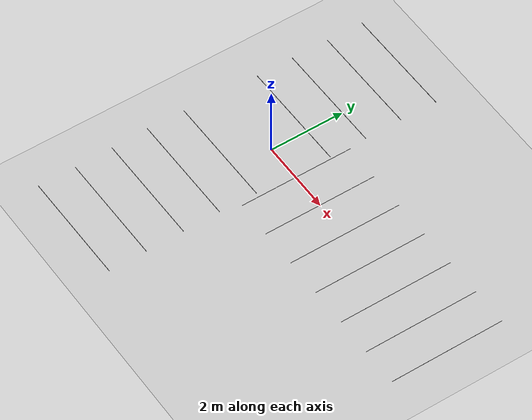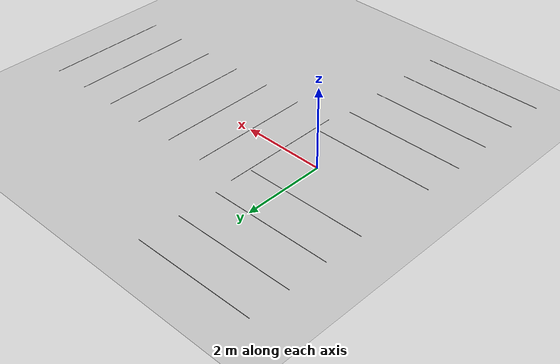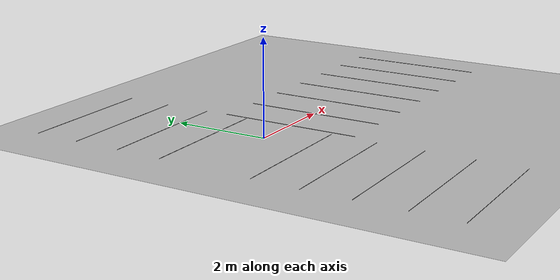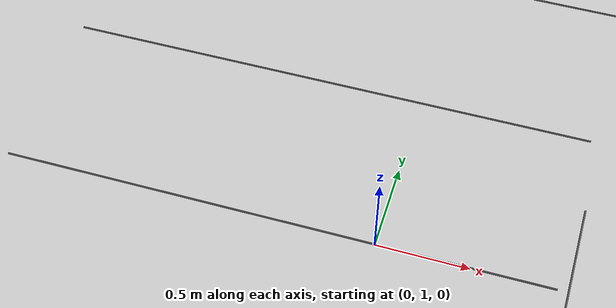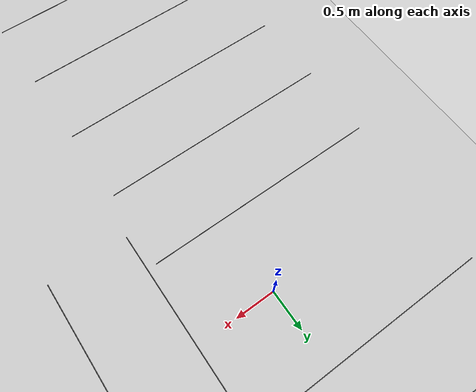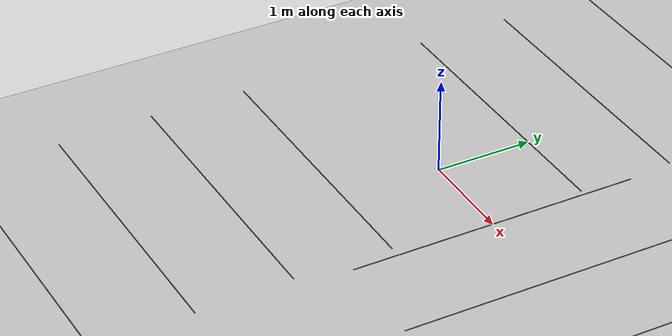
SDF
<sdf version="1.6">
 <world name="default">
  <light name="sun" type="directional">
   <pose>0 0 10 0 -0 0</pose>
   <diffuse>0.8 0.8 0.8 1</diffuse>
   <specular>0.1 0.1 0.1 1</specular>
   <attenuation>
    <range>1000</range>
    <constant>0.9</constant>
    <linear>0.01</linear>
    <quadratic>0.001</quadratic>
   </attenuation>
   <direction>-0.5 0.5 -1</direction>
  </light>
  <model name="ground_plane">
   <static>1</static>
   <link name="link">
    <collision name="collision">
     <geometry><plane><normal>0 0 1</normal><size>100 100</size></plane></geometry>
     <surface><friction><ode><mu>100</mu><mu2>50</mu2></ode></friction></surface>
    </collision>
    <visual name="visual">
     <cast_shadows>0</cast_shadows>
     <geometry><plane><normal>0 0 1</normal><size>100 100</size></plane></geometry>
     <material>
      <script><uri>file://media/materials/scripts/gazebo.material</uri><name>Gazebo/Grey</name></script>
     </material>
    </visual>
    <gravity>0</gravity>
   </link>
  </model>
  <gravity>0 0 -9.8</gravity>
  <magnetic_field>6e-06 2.3e-05 -4.2e-05</magnetic_field>
  <atmosphere type="adiabatic"/>
  <physics name="default_physics" default="0" type="ode">
   <max_step_size>0.001</max_step_size>
   <real_time_factor>1</real_time_factor>
   <real_time_update_rate>1000</real_time_update_rate>
  </physics>
  <scene><ambient>0.4 0.4 0.4 1</ambient><background>0.7 0.7 0.7 1</background><shadows>1</shadows></scene>
  <spherical_coordinates>
   <surface_model>EARTH_WGS84</surface_model>
   <latitude_deg>0</latitude_deg>
   <longitude_deg>0</longitude_deg>
   <elevation>0</elevation>
   <heading_deg>0</heading_deg>
  </spherical_coordinates>
  <model name="unit_cylinder_0_1_0">
   <static>1</static>
   <link name="link">
    <inertial>
     <mass>1</mass>
     <inertia><ixx>0.145833</ixx><ixy>0</ixy><ixz>0</ixz><iyy>0.145833</iyy><iyz>0</iyz><izz>0.125</izz></inertia>
    </inertial>
    <gravity>0</gravity>
    <visual name="visual">
     <geometry><cylinder><radius>0.005</radius><length>3</length></cylinder></geometry>
     <material>
      <script><name>Gazebo/DarkGrey</name><uri>file://media/materials/scripts/gazebo.material</uri></script>
      <ambient>0.3 0.3 0.3 1</ambient>
      <diffuse>0.7 0.7 0.7 1</diffuse>
      <specular>0.01 0.01 0.01 1</specular>
      <emissive>0 0 0 1</emissive>
      <shader type="vertex"><normal_map>__default__</normal_map></shader>
     </material>
    </visual>
    <collision name="collision">
     <geometry><cylinder><radius>0.005</radius><length>3</length></cylinder></geometry>
     <surface>
      <friction>
       <ode><mu>1</mu><mu2>1</mu2><fdir1>0 0 0</fdir1><slip1>0</slip1><slip2>0</slip2></ode>
       <torsional>
        <coefficient>1</coefficient>
        <patch_radius>0</patch_radius>
        <surface_radius>0</surface_radius>
        <use_patch_radius>1</use_patch_radius>
        <ode><slip>0</slip></ode>
       </torsional>
      </friction>
      <bounce><restitution_coefficient>0</restitution_coefficient><threshold>1e+06</threshold></bounce>
      <contact>
       <collide_without_contact>0</collide_without_contact>
       <collide_without_contact_bitmask>1</collide_without_contact_bitmask>
       <collide_bitmask>1</collide_bitmask>
       <ode>
        <soft_cfm>0</soft_cfm>
        <soft_erp>0.2</soft_erp>
        <kp>1e+13</kp>
        <kd>1</kd>
        <max_vel>0.01</max_vel>
        <min_depth>0</min_depth>
       </ode>
       <bullet>
        <split_impulse>1</split_impulse>
        <split_impulse_penetration_threshold>-0.01</split_impulse_penetration_threshold>
        <soft_cfm>0</soft_cfm>
        <soft_erp>0.2</soft_erp>
        <kp>1e+13</kp>
        <kd>1</kd>
       </bullet>
      </contact>
     </surface>
    </collision>
   </link>
   <static>1</static>
   <pose>0.998726 0.028719 0.005 1.5708 4e-06 1e-06</pose>
  </model>
  <model name="unit_cylinder_0_1_0_clone">
   <static>1</static>
   <link name="link">
    <inertial>
     <mass>1</mass>
     <inertia><ixx>0.145833</ixx><ixy>0</ixy><ixz>0</ixz><iyy>0.145833</iyy><iyz>0</iyz><izz>0.125</izz></inertia>
    </inertial>
    <gravity>0</gravity>
    <visual name="visual">
     <geometry><cylinder><radius>0.005</radius><length>3</length></cylinder></geometry>
     <material>
      <script><name>Gazebo/DarkGrey</name><uri>file://media/materials/scripts/gazebo.material</uri></script>
      <ambient>0.3 0.3 0.3 1</ambient>
      <diffuse>0.7 0.7 0.7 1</diffuse>
      <specular>0.01 0.01 0.01 1</specular>
      <emissive>0 0 0 1</emissive>
      <shader type="vertex"><normal_map>__default__</normal_map></shader>
     </material>
    </visual>
    <collision name="collision">
     <geometry><cylinder><radius>0.005</radius><length>3</length></cylinder></geometry>
     <surface>
      <friction>
       <ode><mu>1</mu><mu2>1</mu2><fdir1>0 0 0</fdir1><slip1>0</slip1><slip2>0</slip2></ode>
       <torsional>
        <coefficient>1</coefficient>
        <patch_radius>0</patch_radius>
        <surface_radius>0</surface_radius>
        <use_patch_radius>1</use_patch_radius>
        <ode><slip>0</slip></ode>
       </torsional>
      </friction>
      <bounce><restitution_coefficient>0</restitution_coefficient><threshold>1e+06</threshold></bounce>
      <contact>
       <collide_without_contact>0</collide_without_contact>
       <collide_without_contact_bitmask>1</collide_without_contact_bitmask>
       <collide_bitmask>1</collide_bitmask>
       <ode>
        <soft_cfm>0</soft_cfm>
        <soft_erp>0.2</soft_erp>
        <kp>1e+13</kp>
        <kd>1</kd>
        <max_vel>0.01</max_vel>
        <min_depth>0</min_depth>
       </ode>
       <bullet>
        <split_impulse>1</split_impulse>
        <split_impulse_penetration_threshold>-0.01</split_impulse_penetration_threshold>
        <soft_cfm>0</soft_cfm>
        <soft_erp>0.2</soft_erp>
        <kp>1e+13</kp>
        <kd>1</kd>
       </bullet>
      </contact>
     </surface>
    </collision>
   </link>
   <static>1</static>
   <pose>1.98473 0.005179 0.005 1.5708 4e-06 1e-06</pose>
  </model>
  <model name="unit_cylinder_0_1_0_clone_0">
   <static>1</static>
   <link name="link">
    <inertial>
     <mass>1</mass>
     <inertia><ixx>0.145833</ixx><ixy>0</ixy><ixz>0</ixz><iyy>0.145833</iyy><iyz>0</iyz><izz>0.125</izz></inertia>
    </inertial>
    <gravity>0</gravity>
    <visual name="visual">
     <geometry><cylinder><radius>0.005</radius><length>3</length></cylinder></geometry>
     <material>
      <script><name>Gazebo/DarkGrey</name><uri>file://media/materials/scripts/gazebo.material</uri></script>
      <ambient>0.3 0.3 0.3 1</ambient>
      <diffuse>0.7 0.7 0.7 1</diffuse>
      <specular>0.01 0.01 0.01 1</specular>
      <emissive>0 0 0 1</emissive>
      <shader type="vertex"><normal_map>__default__</normal_map></shader>
     </material>
    </visual>
    <collision name="collision">
     <geometry><cylinder><radius>0.005</radius><length>3</length></cylinder></geometry>
     <surface>
      <friction>
       <ode><mu>1</mu><mu2>1</mu2><fdir1>0 0 0</fdir1><slip1>0</slip1><slip2>0</slip2></ode>
       <torsional>
        <coefficient>1</coefficient>
        <patch_radius>0</patch_radius>
        <surface_radius>0</surface_radius>
        <use_patch_radius>1</use_patch_radius>
        <ode><slip>0</slip></ode>
       </torsional>
      </friction>
      <bounce><restitution_coefficient>0</restitution_coefficient><threshold>1e+06</threshold></bounce>
      <contact>
       <collide_without_contact>0</collide_without_contact>
       <collide_without_contact_bitmask>1</collide_without_contact_bitmask>
       <collide_bitmask>1</collide_bitmask>
       <ode>
        <soft_cfm>0</soft_cfm>
        <soft_erp>0.2</soft_erp>
        <kp>1e+13</kp>
        <kd>1</kd>
        <max_vel>0.01</max_vel>
        <min_depth>0</min_depth>
       </ode>
       <bullet>
        <split_impulse>1</split_impulse>
        <split_impulse_penetration_threshold>-0.01</split_impulse_penetration_threshold>
        <soft_cfm>0</soft_cfm>
        <soft_erp>0.2</soft_erp>
        <kp>1e+13</kp>
        <kd>1</kd>
       </bullet>
      </contact>
     </surface>
    </collision>
   </link>
   <static>1</static>
   <pose>2.9918 0.003827 0.005 1.5708 4e-06 1e-06</pose>
  </model>
  <model name="unit_cylinder_0_1_0_clone_1">
   <static>1</static>
   <link name="link">
    <inertial>
     <mass>1</mass>
     <inertia><ixx>0.145833</ixx><ixy>0</ixy><ixz>0</ixz><iyy>0.145833</iyy><iyz>0</iyz><izz>0.125</izz></inertia>
    </inertial>
    <gravity>0</gravity>
    <visual name="visual">
     <geometry><cylinder><radius>0.005</radius><length>3</length></cylinder></geometry>
     <material>
      <script><name>Gazebo/DarkGrey</name><uri>file://media/materials/scripts/gazebo.material</uri></script>
      <ambient>0.3 0.3 0.3 1</ambient>
      <diffuse>0.7 0.7 0.7 1</diffuse>
      <specular>0.01 0.01 0.01 1</specular>
      <emissive>0 0 0 1</emissive>
      <shader type="vertex"><normal_map>__default__</normal_map></shader>
     </material>
    </visual>
    <collision name="collision">
     <geometry><cylinder><radius>0.005</radius><length>3</length></cylinder></geometry>
     <surface>
      <friction>
       <ode><mu>1</mu><mu2>1</mu2><fdir1>0 0 0</fdir1><slip1>0</slip1><slip2>0</slip2></ode>
       <torsional>
        <coefficient>1</coefficient>
        <patch_radius>0</patch_radius>
        <surface_radius>0</surface_radius>
        <use_patch_radius>1</use_patch_radius>
        <ode><slip>0</slip></ode>
       </torsional>
      </friction>
      <bounce><restitution_coefficient>0</restitution_coefficient><threshold>1e+06</threshold></bounce>
      <contact>
       <collide_without_contact>0</collide_without_contact>
       <collide_without_contact_bitmask>1</collide_without_contact_bitmask>
       <collide_bitmask>1</collide_bitmask>
       <ode>
        <soft_cfm>0</soft_cfm>
        <soft_erp>0.2</soft_erp>
        <kp>1e+13</kp>
        <kd>1</kd>
        <max_vel>0.01</max_vel>
        <min_depth>0</min_depth>
       </ode>
       <bullet>
        <split_impulse>1</split_impulse>
        <split_impulse_penetration_threshold>-0.01</split_impulse_penetration_threshold>
        <soft_cfm>0</soft_cfm>
        <soft_erp>0.2</soft_erp>
        <kp>1e+13</kp>
        <kd>1</kd>
       </bullet>
      </contact>
     </surface>
    </collision>
   </link>
   <static>1</static>
   <pose>4 0 0.005 1.5708 4e-06 1e-06</pose>
  </model>
  <model name="unit_cylinder_0_1_0_clone_2">
   <static>1</static>
   <link name="link">
    <inertial>
     <mass>1</mass>
     <inertia><ixx>0.145833</ixx><ixy>0</ixy><ixz>0</ixz><iyy>0.145833</iyy><iyz>0</iyz><izz>0.125</izz></inertia>
    </inertial>
    <gravity>0</gravity>
    <visual name="visual">
     <geometry><cylinder><radius>0.005</radius><length>3</length></cylinder></geometry>
     <material>
      <script><name>Gazebo/DarkGrey</name><uri>file://media/materials/scripts/gazebo.material</uri></script>
      <ambient>0.3 0.3 0.3 1</ambient>
      <diffuse>0.7 0.7 0.7 1</diffuse>
      <specular>0.01 0.01 0.01 1</specular>
      <emissive>0 0 0 1</emissive>
      <shader type="vertex"><normal_map>__default__</normal_map></shader>
     </material>
    </visual>
    <collision name="collision">
     <geometry><cylinder><radius>0.005</radius><length>3</length></cylinder></geometry>
     <surface>
      <friction>
       <ode><mu>1</mu><mu2>1</mu2><fdir1>0 0 0</fdir1><slip1>0</slip1><slip2>0</slip2></ode>
       <torsional>
        <coefficient>1</coefficient>
        <patch_radius>0</patch_radius>
        <surface_radius>0</surface_radius>
        <use_patch_radius>1</use_patch_radius>
        <ode><slip>0</slip></ode>
       </torsional>
      </friction>
      <bounce><restitution_coefficient>0</restitution_coefficient><threshold>1e+06</threshold></bounce>
      <contact>
       <collide_without_contact>0</collide_without_contact>
       <collide_without_contact_bitmask>1</collide_without_contact_bitmask>
       <collide_bitmask>1</collide_bitmask>
       <ode>
        <soft_cfm>0</soft_cfm>
        <soft_erp>0.2</soft_erp>
        <kp>1e+13</kp>
        <kd>1</kd>
        <max_vel>0.01</max_vel>
        <min_depth>0</min_depth>
       </ode>
       <bullet>
        <split_impulse>1</split_impulse>
        <split_impulse_penetration_threshold>-0.01</split_impulse_penetration_threshold>
        <soft_cfm>0</soft_cfm>
        <soft_erp>0.2</soft_erp>
        <kp>1e+13</kp>
        <kd>1</kd>
       </bullet>
      </contact>
     </surface>
    </collision>
   </link>
   <static>1</static>
   <pose>5 0 0.005 1.5708 4e-06 1e-06</pose>
  </model>
  <model name="unit_cylinder_0_1_0_clone_3">
   <static>1</static>
   <link name="link">
    <inertial>
     <mass>1</mass>
     <inertia><ixx>0.145833</ixx><ixy>0</ixy><ixz>0</ixz><iyy>0.145833</iyy><iyz>0</iyz><izz>0.125</izz></inertia>
    </inertial>
    <gravity>0</gravity>
    <visual name="visual">
     <geometry><cylinder><radius>0.005</radius><length>3</length></cylinder></geometry>
     <material>
      <script><name>Gazebo/DarkGrey</name><uri>file://media/materials/scripts/gazebo.material</uri></script>
      <ambient>0.3 0.3 0.3 1</ambient>
      <diffuse>0.7 0.7 0.7 1</diffuse>
      <specular>0.01 0.01 0.01 1</specular>
      <emissive>0 0 0 1</emissive>
      <shader type="vertex"><normal_map>__default__</normal_map></shader>
     </material>
    </visual>
    <collision name="collision">
     <geometry><cylinder><radius>0.005</radius><length>3</length></cylinder></geometry>
     <surface>
      <friction>
       <ode><mu>1</mu><mu2>1</mu2><fdir1>0 0 0</fdir1><slip1>0</slip1><slip2>0</slip2></ode>
       <torsional>
        <coefficient>1</coefficient>
        <patch_radius>0</patch_radius>
        <surface_radius>0</surface_radius>
        <use_patch_radius>1</use_patch_radius>
        <ode><slip>0</slip></ode>
       </torsional>
      </friction>
      <bounce><restitution_coefficient>0</restitution_coefficient><threshold>1e+06</threshold></bounce>
      <contact>
       <collide_without_contact>0</collide_without_contact>
       <collide_without_contact_bitmask>1</collide_without_contact_bitmask>
       <collide_bitmask>1</collide_bitmask>
       <ode>
        <soft_cfm>0</soft_cfm>
        <soft_erp>0.2</soft_erp>
        <kp>1e+13</kp>
        <kd>1</kd>
        <max_vel>0.01</max_vel>
        <min_depth>0</min_depth>
       </ode>
       <bullet>
        <split_impulse>1</split_impulse>
        <split_impulse_penetration_threshold>-0.01</split_impulse_penetration_threshold>
        <soft_cfm>0</soft_cfm>
        <soft_erp>0.2</soft_erp>
        <kp>1e+13</kp>
        <kd>1</kd>
       </bullet>
      </contact>
     </surface>
    </collision>
   </link>
   <static>1</static>
   <pose>5.98956 -0.001787 0.005 1.5708 4e-06 1e-06</pose>
  </model>
  <model name="unit_cylinder_0_1_0_clone_4">
   <static>1</static>
   <link name="link">
    <inertial>
     <mass>1</mass>
     <inertia><ixx>0.145833</ixx><ixy>0</ixy><ixz>0</ixz><iyy>0.145833</iyy><iyz>0</iyz><izz>0.125</izz></inertia>
    </inertial>
    <gravity>0</gravity>
    <visual name="visual">
     <geometry><cylinder><radius>0.005</radius><length>3</length></cylinder></geometry>
     <material>
      <script><name>Gazebo/DarkGrey</name><uri>file://media/materials/scripts/gazebo.material</uri></script>
      <ambient>0.3 0.3 0.3 1</ambient>
      <diffuse>0.7 0.7 0.7 1</diffuse>
      <specular>0.01 0.01 0.01 1</specular>
      <emissive>0 0 0 1</emissive>
      <shader type="vertex"><normal_map>__default__</normal_map></shader>
     </material>
    </visual>
    <collision name="collision">
     <geometry><cylinder><radius>0.005</radius><length>3</length></cylinder></geometry>
     <surface>
      <friction>
       <ode><mu>1</mu><mu2>1</mu2><fdir1>0 0 0</fdir1><slip1>0</slip1><slip2>0</slip2></ode>
       <torsional>
        <coefficient>1</coefficient>
        <patch_radius>0</patch_radius>
        <surface_radius>0</surface_radius>
        <use_patch_radius>1</use_patch_radius>
        <ode><slip>0</slip></ode>
       </torsional>
      </friction>
      <bounce><restitution_coefficient>0</restitution_coefficient><threshold>1e+06</threshold></bounce>
      <contact>
       <collide_without_contact>0</collide_without_contact>
       <collide_without_contact_bitmask>1</collide_without_contact_bitmask>
       <collide_bitmask>1</collide_bitmask>
       <ode>
        <soft_cfm>0</soft_cfm>
        <soft_erp>0.2</soft_erp>
        <kp>1e+13</kp>
        <kd>1</kd>
        <max_vel>0.01</max_vel>
        <min_depth>0</min_depth>
       </ode>
       <bullet>
        <split_impulse>1</split_impulse>
        <split_impulse_penetration_threshold>-0.01</split_impulse_penetration_threshold>
        <soft_cfm>0</soft_cfm>
        <soft_erp>0.2</soft_erp>
        <kp>1e+13</kp>
        <kd>1</kd>
       </bullet>
      </contact>
     </surface>
    </collision>
   </link>
   <static>1</static>
   <pose>6.97946 0.000721 0.005 1.5708 4e-06 1e-06</pose>
  </model>
  <model name="unit_cylinder_0_1_0_clone_5">
   <static>1</static>
   <link name="link">
    <inertial>
     <mass>1</mass>
     <inertia><ixx>0.145833</ixx><ixy>0</ixy><ixz>0</ixz><iyy>0.145833</iyy><iyz>0</iyz><izz>0.125</izz></inertia>
    </inertial>
    <gravity>0</gravity>
    <visual name="visual">
     <geometry><cylinder><radius>0.005</radius><length>3</length></cylinder></geometry>
     <material>
      <script><name>Gazebo/DarkGrey</name><uri>file://media/materials/scripts/gazebo.material</uri></script>
      <ambient>0.3 0.3 0.3 1</ambient>
      <diffuse>0.7 0.7 0.7 1</diffuse>
      <specular>0.01 0.01 0.01 1</specular>
      <emissive>0 0 0 1</emissive>
      <shader type="vertex"><normal_map>__default__</normal_map></shader>
     </material>
    </visual>
    <collision name="collision">
     <geometry><cylinder><radius>0.005</radius><length>3</length></cylinder></geometry>
     <surface>
      <friction>
       <ode><mu>1</mu><mu2>1</mu2><fdir1>0 0 0</fdir1><slip1>0</slip1><slip2>0</slip2></ode>
       <torsional>
        <coefficient>1</coefficient>
        <patch_radius>0</patch_radius>
        <surface_radius>0</surface_radius>
        <use_patch_radius>1</use_patch_radius>
        <ode><slip>0</slip></ode>
       </torsional>
      </friction>
      <bounce><restitution_coefficient>0</restitution_coefficient><threshold>1e+06</threshold></bounce>
      <contact>
       <collide_without_contact>0</collide_without_contact>
       <collide_without_contact_bitmask>1</collide_without_contact_bitmask>
       <collide_bitmask>1</collide_bitmask>
       <ode>
        <soft_cfm>0</soft_cfm>
        <soft_erp>0.2</soft_erp>
        <kp>1e+13</kp>
        <kd>1</kd>
        <max_vel>0.01</max_vel>
        <min_depth>0</min_depth>
       </ode>
       <bullet>
        <split_impulse>1</split_impulse>
        <split_impulse_penetration_threshold>-0.01</split_impulse_penetration_threshold>
        <soft_cfm>0</soft_cfm>
        <soft_erp>0.2</soft_erp>
        <kp>1e+13</kp>
        <kd>1</kd>
       </bullet>
      </contact>
     </surface>
    </collision>
   </link>
   <static>1</static>
   <pose>-0.613039 -1.02031 0.005 1.5708 -0 1.57955</pose>
  </model>
  <model name="unit_cylinder_0_1_0_clone_5_clone">
   <static>1</static>
   <link name="link">
    <inertial>
     <mass>1</mass>
     <inertia><ixx>0.145833</ixx><ixy>0</ixy><ixz>0</ixz><iyy>0.145833</iyy><iyz>0</iyz><izz>0.125</izz></inertia>
    </inertial>
    <gravity>0</gravity>
    <visual name="visual">
     <geometry><cylinder><radius>0.005</radius><length>3</length></cylinder></geometry>
     <material>
      <script><name>Gazebo/DarkGrey</name><uri>file://media/materials/scripts/gazebo.material</uri></script>
      <ambient>0.3 0.3 0.3 1</ambient>
      <diffuse>0.7 0.7 0.7 1</diffuse>
      <specular>0.01 0.01 0.01 1</specular>
      <emissive>0 0 0 1</emissive>
      <shader type="vertex"><normal_map>__default__</normal_map></shader>
     </material>
    </visual>
    <collision name="collision">
     <geometry><cylinder><radius>0.005</radius><length>3</length></cylinder></geometry>
     <surface>
      <friction>
       <ode><mu>1</mu><mu2>1</mu2><fdir1>0 0 0</fdir1><slip1>0</slip1><slip2>0</slip2></ode>
       <torsional>
        <coefficient>1</coefficient>
        <patch_radius>0</patch_radius>
        <surface_radius>0</surface_radius>
        <use_patch_radius>1</use_patch_radius>
        <ode><slip>0</slip></ode>
       </torsional>
      </friction>
      <bounce><restitution_coefficient>0</restitution_coefficient><threshold>1e+06</threshold></bounce>
      <contact>
       <collide_without_contact>0</collide_without_contact>
       <collide_without_contact_bitmask>1</collide_without_contact_bitmask>
       <collide_bitmask>1</collide_bitmask>
       <ode>
        <soft_cfm>0</soft_cfm>
        <soft_erp>0.2</soft_erp>
        <kp>1e+13</kp>
        <kd>1</kd>
        <max_vel>0.01</max_vel>
        <min_depth>0</min_depth>
       </ode>
       <bullet>
        <split_impulse>1</split_impulse>
        <split_impulse_penetration_threshold>-0.01</split_impulse_penetration_threshold>
        <soft_cfm>0</soft_cfm>
        <soft_erp>0.2</soft_erp>
        <kp>1e+13</kp>
        <kd>1</kd>
       </bullet>
      </contact>
     </surface>
    </collision>
   </link>
   <static>1</static>
   <pose>-0.638631 -2.02133 0.005 1.5708 -0 1.57955</pose>
  </model>
  <model name="unit_cylinder_0_1_0_clone_5_clone_0">
   <static>1</static>
   <link name="link">
    <inertial>
     <mass>1</mass>
     <inertia><ixx>0.145833</ixx><ixy>0</ixy><ixz>0</ixz><iyy>0.145833</iyy><iyz>0</iyz><izz>0.125</izz></inertia>
    </inertial>
    <gravity>0</gravity>
    <visual name="visual">
     <geometry><cylinder><radius>0.005</radius><length>3</length></cylinder></geometry>
     <material>
      <script><name>Gazebo/DarkGrey</name><uri>file://media/materials/scripts/gazebo.material</uri></script>
      <ambient>0.3 0.3 0.3 1</ambient>
      <diffuse>0.7 0.7 0.7 1</diffuse>
      <specular>0.01 0.01 0.01 1</specular>
      <emissive>0 0 0 1</emissive>
      <shader type="vertex"><normal_map>__default__</normal_map></shader>
     </material>
    </visual>
    <collision name="collision">
     <geometry><cylinder><radius>0.005</radius><length>3</length></cylinder></geometry>
     <surface>
      <friction>
       <ode><mu>1</mu><mu2>1</mu2><fdir1>0 0 0</fdir1><slip1>0</slip1><slip2>0</slip2></ode>
       <torsional>
        <coefficient>1</coefficient>
        <patch_radius>0</patch_radius>
        <surface_radius>0</surface_radius>
        <use_patch_radius>1</use_patch_radius>
        <ode><slip>0</slip></ode>
       </torsional>
      </friction>
      <bounce><restitution_coefficient>0</restitution_coefficient><threshold>1e+06</threshold></bounce>
      <contact>
       <collide_without_contact>0</collide_without_contact>
       <collide_without_contact_bitmask>1</collide_without_contact_bitmask>
       <collide_bitmask>1</collide_bitmask>
       <ode>
        <soft_cfm>0</soft_cfm>
        <soft_erp>0.2</soft_erp>
        <kp>1e+13</kp>
        <kd>1</kd>
        <max_vel>0.01</max_vel>
        <min_depth>0</min_depth>
       </ode>
       <bullet>
        <split_impulse>1</split_impulse>
        <split_impulse_penetration_threshold>-0.01</split_impulse_penetration_threshold>
        <soft_cfm>0</soft_cfm>
        <soft_erp>0.2</soft_erp>
        <kp>1e+13</kp>
        <kd>1</kd>
       </bullet>
      </contact>
     </surface>
    </collision>
   </link>
   <static>1</static>
   <pose>-0.612411 -3.01488 0.005 1.5708 -0 1.57955</pose>
  </model>
  <model name="unit_cylinder_0_1_0_clone_5_clone_1">
   <static>1</static>
   <link name="link">
    <inertial>
     <mass>1</mass>
     <inertia><ixx>0.145833</ixx><ixy>0</ixy><ixz>0</ixz><iyy>0.145833</iyy><iyz>0</iyz><izz>0.125</izz></inertia>
    </inertial>
    <gravity>0</gravity>
    <visual name="visual">
     <geometry><cylinder><radius>0.005</radius><length>3</length></cylinder></geometry>
     <material>
      <script><name>Gazebo/DarkGrey</name><uri>file://media/materials/scripts/gazebo.material</uri></script>
      <ambient>0.3 0.3 0.3 1</ambient>
      <diffuse>0.7 0.7 0.7 1</diffuse>
      <specular>0.01 0.01 0.01 1</specular>
      <emissive>0 0 0 1</emissive>
      <shader type="vertex"><normal_map>__default__</normal_map></shader>
     </material>
    </visual>
    <collision name="collision">
     <geometry><cylinder><radius>0.005</radius><length>3</length></cylinder></geometry>
     <surface>
      <friction>
       <ode><mu>1</mu><mu2>1</mu2><fdir1>0 0 0</fdir1><slip1>0</slip1><slip2>0</slip2></ode>
       <torsional>
        <coefficient>1</coefficient>
        <patch_radius>0</patch_radius>
        <surface_radius>0</surface_radius>
        <use_patch_radius>1</use_patch_radius>
        <ode><slip>0</slip></ode>
       </torsional>
      </friction>
      <bounce><restitution_coefficient>0</restitution_coefficient><threshold>1e+06</threshold></bounce>
      <contact>
       <collide_without_contact>0</collide_without_contact>
       <collide_without_contact_bitmask>1</collide_without_contact_bitmask>
       <collide_bitmask>1</collide_bitmask>
       <ode>
        <soft_cfm>0</soft_cfm>
        <soft_erp>0.2</soft_erp>
        <kp>1e+13</kp>
        <kd>1</kd>
        <max_vel>0.01</max_vel>
        <min_depth>0</min_depth>
       </ode>
       <bullet>
        <split_impulse>1</split_impulse>
        <split_impulse_penetration_threshold>-0.01</split_impulse_penetration_threshold>
        <soft_cfm>0</soft_cfm>
        <soft_erp>0.2</soft_erp>
        <kp>1e+13</kp>
        <kd>1</kd>
       </bullet>
      </contact>
     </surface>
    </collision>
   </link>
   <static>1</static>
   <pose>-0.598652 -4.02654 0.005 1.5708 -0 1.57955</pose>
  </model>
  <model name="unit_cylinder_0_1_0_clone_5_clone_2">
   <static>1</static>
   <link name="link">
    <inertial>
     <mass>1</mass>
     <inertia><ixx>0.145833</ixx><ixy>0</ixy><ixz>0</ixz><iyy>0.145833</iyy><iyz>0</iyz><izz>0.125</izz></inertia>
    </inertial>
    <gravity>0</gravity>
    <visual name="visual">
     <geometry><cylinder><radius>0.005</radius><length>3</length></cylinder></geometry>
     <material>
      <script><name>Gazebo/DarkGrey</name><uri>file://media/materials/scripts/gazebo.material</uri></script>
      <ambient>0.3 0.3 0.3 1</ambient>
      <diffuse>0.7 0.7 0.7 1</diffuse>
      <specular>0.01 0.01 0.01 1</specular>
      <emissive>0 0 0 1</emissive>
      <shader type="vertex"><normal_map>__default__</normal_map></shader>
     </material>
    </visual>
    <collision name="collision">
     <geometry><cylinder><radius>0.005</radius><length>3</length></cylinder></geometry>
     <surface>
      <friction>
       <ode><mu>1</mu><mu2>1</mu2><fdir1>0 0 0</fdir1><slip1>0</slip1><slip2>0</slip2></ode>
       <torsional>
        <coefficient>1</coefficient>
        <patch_radius>0</patch_radius>
        <surface_radius>0</surface_radius>
        <use_patch_radius>1</use_patch_radius>
        <ode><slip>0</slip></ode>
       </torsional>
      </friction>
      <bounce><restitution_coefficient>0</restitution_coefficient><threshold>1e+06</threshold></bounce>
      <contact>
       <collide_without_contact>0</collide_without_contact>
       <collide_without_contact_bitmask>1</collide_without_contact_bitmask>
       <collide_bitmask>1</collide_bitmask>
       <ode>
        <soft_cfm>0</soft_cfm>
        <soft_erp>0.2</soft_erp>
        <kp>1e+13</kp>
        <kd>1</kd>
        <max_vel>0.01</max_vel>
        <min_depth>0</min_depth>
       </ode>
       <bullet>
        <split_impulse>1</split_impulse>
        <split_impulse_penetration_threshold>-0.01</split_impulse_penetration_threshold>
        <soft_cfm>0</soft_cfm>
        <soft_erp>0.2</soft_erp>
        <kp>1e+13</kp>
        <kd>1</kd>
       </bullet>
      </contact>
     </surface>
    </collision>
   </link>
   <static>1</static>
   <pose>-0.594524 -5.02471 0.005 1.5708 -0 1.57955</pose>
  </model>
  <model name="unit_cylinder_0_1_0_clone_5_clone_3">
   <static>1</static>
   <link name="link">
    <inertial>
     <mass>1</mass>
     <inertia><ixx>0.145833</ixx><ixy>0</ixy><ixz>0</ixz><iyy>0.145833</iyy><iyz>0</iyz><izz>0.125</izz></inertia>
    </inertial>
    <gravity>0</gravity>
    <visual name="visual">
     <geometry><cylinder><radius>0.005</radius><length>3</length></cylinder></geometry>
     <material>
      <script><name>Gazebo/DarkGrey</name><uri>file://media/materials/scripts/gazebo.material</uri></script>
      <ambient>0.3 0.3 0.3 1</ambient>
      <diffuse>0.7 0.7 0.7 1</diffuse>
      <specular>0.01 0.01 0.01 1</specular>
      <emissive>0 0 0 1</emissive>
      <shader type="vertex"><normal_map>__default__</normal_map></shader>
     </material>
    </visual>
    <collision name="collision">
     <geometry><cylinder><radius>0.005</radius><length>3</length></cylinder></geometry>
     <surface>
      <friction>
       <ode><mu>1</mu><mu2>1</mu2><fdir1>0 0 0</fdir1><slip1>0</slip1><slip2>0</slip2></ode>
       <torsional>
        <coefficient>1</coefficient>
        <patch_radius>0</patch_radius>
        <surface_radius>0</surface_radius>
        <use_patch_radius>1</use_patch_radius>
        <ode><slip>0</slip></ode>
       </torsional>
      </friction>
      <bounce><restitution_coefficient>0</restitution_coefficient><threshold>1e+06</threshold></bounce>
      <contact>
       <collide_without_contact>0</collide_without_contact>
       <collide_without_contact_bitmask>1</collide_without_contact_bitmask>
       <collide_bitmask>1</collide_bitmask>
       <ode>
        <soft_cfm>0</soft_cfm>
        <soft_erp>0.2</soft_erp>
        <kp>1e+13</kp>
        <kd>1</kd>
        <max_vel>0.01</max_vel>
        <min_depth>0</min_depth>
       </ode>
       <bullet>
        <split_impulse>1</split_impulse>
        <split_impulse_penetration_threshold>-0.01</split_impulse_penetration_threshold>
        <soft_cfm>0</soft_cfm>
        <soft_erp>0.2</soft_erp>
        <kp>1e+13</kp>
        <kd>1</kd>
       </bullet>
      </contact>
     </surface>
    </collision>
   </link>
   <static>1</static>
   <pose>-0.557491 0.993026 0.005 1.5708 -0 1.57955</pose>
  </model>
  <model name="unit_cylinder_0_1_0_clone_5_clone_4">
   <static>1</static>
   <link name="link">
    <inertial>
     <mass>1</mass>
     <inertia><ixx>0.145833</ixx><ixy>0</ixy><ixz>0</ixz><iyy>0.145833</iyy><iyz>0</iyz><izz>0.125</izz></inertia>
    </inertial>
    <gravity>0</gravity>
    <visual name="visual">
     <geometry><cylinder><radius>0.005</radius><length>3</length></cylinder></geometry>
     <material>
      <script><name>Gazebo/DarkGrey</name><uri>file://media/materials/scripts/gazebo.material</uri></script>
      <ambient>0.3 0.3 0.3 1</ambient>
      <diffuse>0.7 0.7 0.7 1</diffuse>
      <specular>0.01 0.01 0.01 1</specular>
      <emissive>0 0 0 1</emissive>
      <shader type="vertex"><normal_map>__default__</normal_map></shader>
     </material>
    </visual>
    <collision name="collision">
     <geometry><cylinder><radius>0.005</radius><length>3</length></cylinder></geometry>
     <surface>
      <friction>
       <ode><mu>1</mu><mu2>1</mu2><fdir1>0 0 0</fdir1><slip1>0</slip1><slip2>0</slip2></ode>
       <torsional>
        <coefficient>1</coefficient>
        <patch_radius>0</patch_radius>
        <surface_radius>0</surface_radius>
        <use_patch_radius>1</use_patch_radius>
        <ode><slip>0</slip></ode>
       </torsional>
      </friction>
      <bounce><restitution_coefficient>0</restitution_coefficient><threshold>1e+06</threshold></bounce>
      <contact>
       <collide_without_contact>0</collide_without_contact>
       <collide_without_contact_bitmask>1</collide_without_contact_bitmask>
       <collide_bitmask>1</collide_bitmask>
       <ode>
        <soft_cfm>0</soft_cfm>
        <soft_erp>0.2</soft_erp>
        <kp>1e+13</kp>
        <kd>1</kd>
        <max_vel>0.01</max_vel>
        <min_depth>0</min_depth>
       </ode>
       <bullet>
        <split_impulse>1</split_impulse>
        <split_impulse_penetration_threshold>-0.01</split_impulse_penetration_threshold>
        <soft_cfm>0</soft_cfm>
        <soft_erp>0.2</soft_erp>
        <kp>1e+13</kp>
        <kd>1</kd>
       </bullet>
      </contact>
     </surface>
    </collision>
   </link>
   <static>1</static>
   <pose>-0.547882 1.98905 0.005 1.5708 -0 1.57955</pose>
  </model>
  <model name="unit_cylinder_0_1_0_clone_5_clone_5">
   <static>1</static>
   <link name="link">
    <inertial>
     <mass>1</mass>
     <inertia><ixx>0.145833</ixx><ixy>0</ixy><ixz>0</ixz><iyy>0.145833</iyy><iyz>0</iyz><izz>0.125</izz></inertia>
    </inertial>
    <gravity>0</gravity>
    <visual name="visual">
     <geometry><cylinder><radius>0.005</radius><length>3</length></cylinder></geometry>
     <material>
      <script><name>Gazebo/DarkGrey</name><uri>file://media/materials/scripts/gazebo.material</uri></script>
      <ambient>0.3 0.3 0.3 1</ambient>
      <diffuse>0.7 0.7 0.7 1</diffuse>
      <specular>0.01 0.01 0.01 1</specular>
      <emissive>0 0 0 1</emissive>
      <shader type="vertex"><normal_map>__default__</normal_map></shader>
     </material>
    </visual>
    <collision name="collision">
     <geometry><cylinder><radius>0.005</radius><length>3</length></cylinder></geometry>
     <surface>
      <friction>
       <ode><mu>1</mu><mu2>1</mu2><fdir1>0 0 0</fdir1><slip1>0</slip1><slip2>0</slip2></ode>
       <torsional>
        <coefficient>1</coefficient>
        <patch_radius>0</patch_radius>
        <surface_radius>0</surface_radius>
        <use_patch_radius>1</use_patch_radius>
        <ode><slip>0</slip></ode>
       </torsional>
      </friction>
      <bounce><restitution_coefficient>0</restitution_coefficient><threshold>1e+06</threshold></bounce>
      <contact>
       <collide_without_contact>0</collide_without_contact>
       <collide_without_contact_bitmask>1</collide_without_contact_bitmask>
       <collide_bitmask>1</collide_bitmask>
       <ode>
        <soft_cfm>0</soft_cfm>
        <soft_erp>0.2</soft_erp>
        <kp>1e+13</kp>
        <kd>1</kd>
        <max_vel>0.01</max_vel>
        <min_depth>0</min_depth>
       </ode>
       <bullet>
        <split_impulse>1</split_impulse>
        <split_impulse_penetration_threshold>-0.01</split_impulse_penetration_threshold>
        <soft_cfm>0</soft_cfm>
        <soft_erp>0.2</soft_erp>
        <kp>1e+13</kp>
        <kd>1</kd>
       </bullet>
      </contact>
     </surface>
    </collision>
   </link>
   <static>1</static>
   <pose>-0.55173 2.98886 0.005 1.5708 -0 1.57955</pose>
  </model>
  <model name="unit_cylinder_0_1_0_clone_5_clone_6">
   <static>1</static>
   <link name="link">
    <inertial>
     <mass>1</mass>
     <inertia><ixx>0.145833</ixx><ixy>0</ixy><ixz>0</ixz><iyy>0.145833</iyy><iyz>0</iyz><izz>0.125</izz></inertia>
    </inertial>
    <gravity>0</gravity>
    <visual name="visual">
     <geometry><cylinder><radius>0.005</radius><length>3</length></cylinder></geometry>
     <material>
      <script><name>Gazebo/DarkGrey</name><uri>file://media/materials/scripts/gazebo.material</uri></script>
      <ambient>0.3 0.3 0.3 1</ambient>
      <diffuse>0.7 0.7 0.7 1</diffuse>
      <specular>0.01 0.01 0.01 1</specular>
      <emissive>0 0 0 1</emissive>
      <shader type="vertex"><normal_map>__default__</normal_map></shader>
     </material>
    </visual>
    <collision name="collision">
     <geometry><cylinder><radius>0.005</radius><length>3</length></cylinder></geometry>
     <surface>
      <friction>
       <ode><mu>1</mu><mu2>1</mu2><fdir1>0 0 0</fdir1><slip1>0</slip1><slip2>0</slip2></ode>
       <torsional>
        <coefficient>1</coefficient>
        <patch_radius>0</patch_radius>
        <surface_radius>0</surface_radius>
        <use_patch_radius>1</use_patch_radius>
        <ode><slip>0</slip></ode>
       </torsional>
      </friction>
      <bounce><restitution_coefficient>0</restitution_coefficient><threshold>1e+06</threshold></bounce>
      <contact>
       <collide_without_contact>0</collide_without_contact>
       <collide_without_contact_bitmask>1</collide_without_contact_bitmask>
       <collide_bitmask>1</collide_bitmask>
       <ode>
        <soft_cfm>0</soft_cfm>
        <soft_erp>0.2</soft_erp>
        <kp>1e+13</kp>
        <kd>1</kd>
        <max_vel>0.01</max_vel>
        <min_depth>0</min_depth>
       </ode>
       <bullet>
        <split_impulse>1</split_impulse>
        <split_impulse_penetration_threshold>-0.01</split_impulse_penetration_threshold>
        <soft_cfm>0</soft_cfm>
        <soft_erp>0.2</soft_erp>
        <kp>1e+13</kp>
        <kd>1</kd>
       </bullet>
      </contact>
     </surface>
    </collision>
   </link>
   <static>1</static>
   <pose>-0.529359 3.97716 0.005 1.5708 -0 1.57955</pose>
  </model>
 </world>
</sdf>
